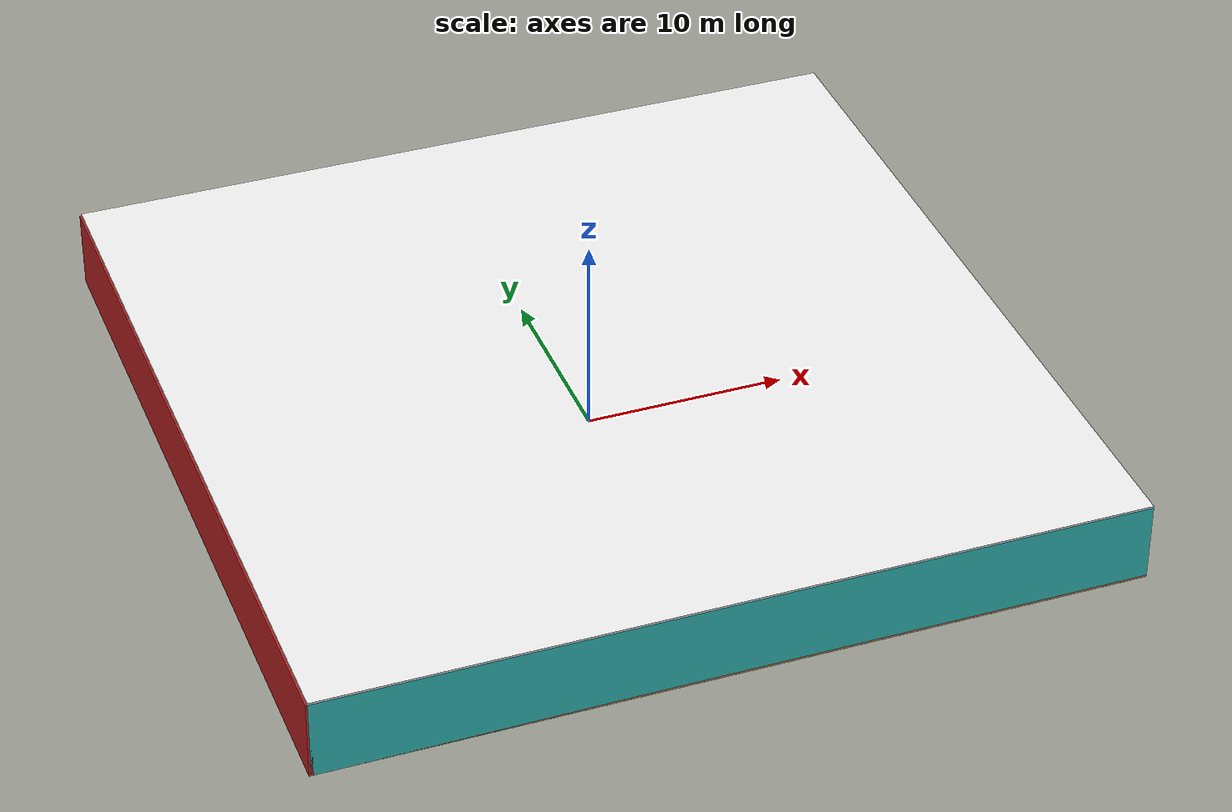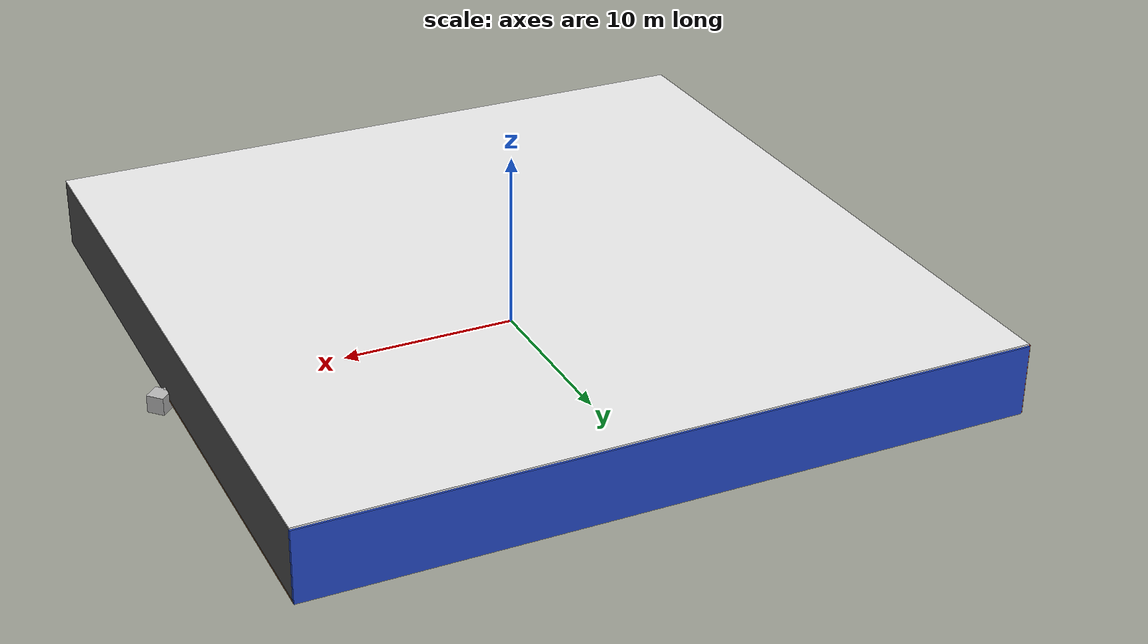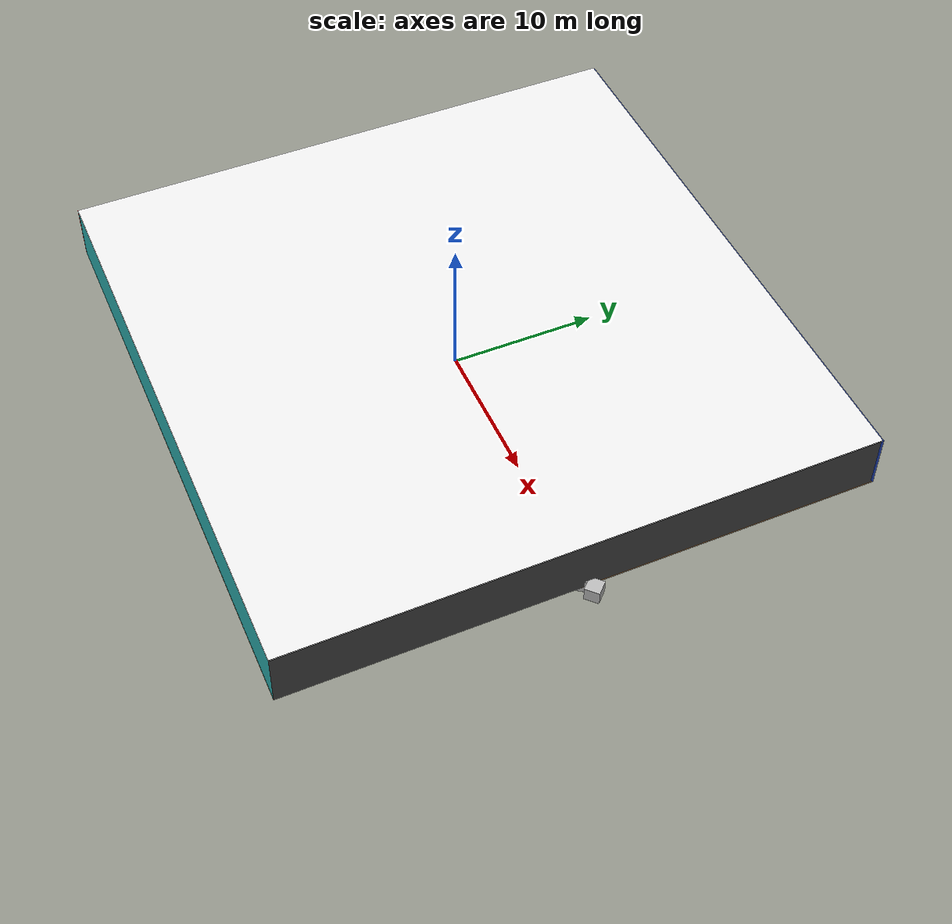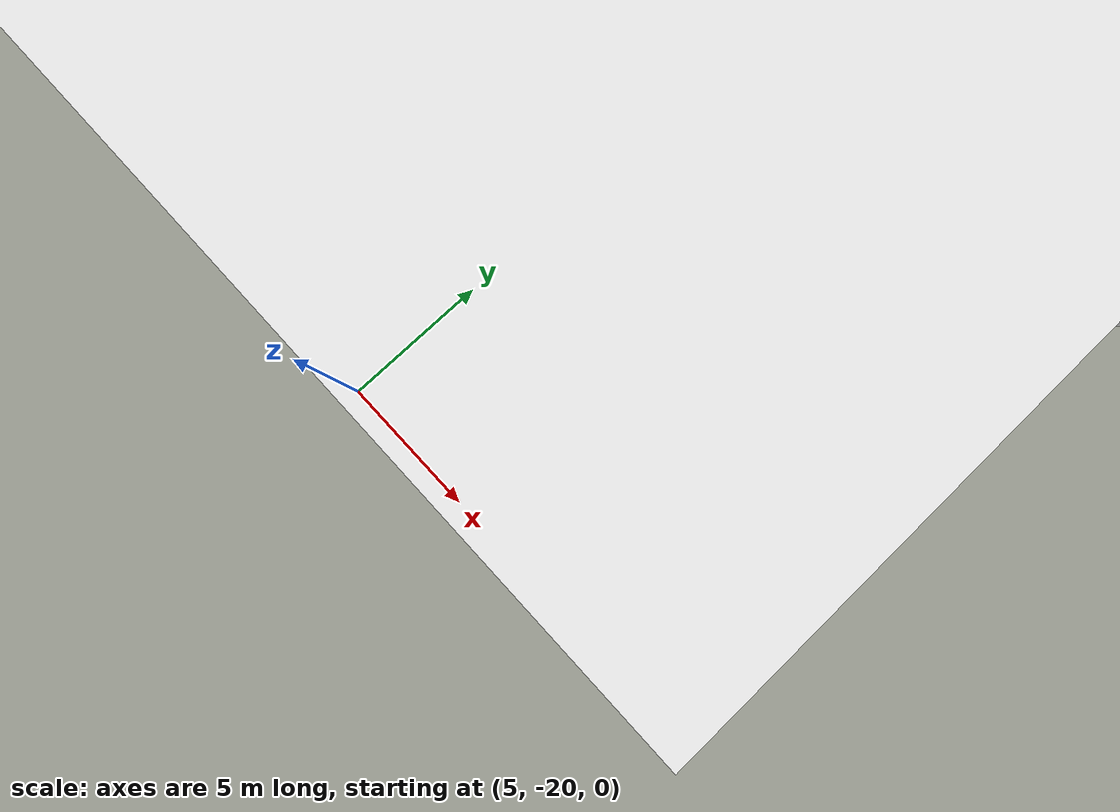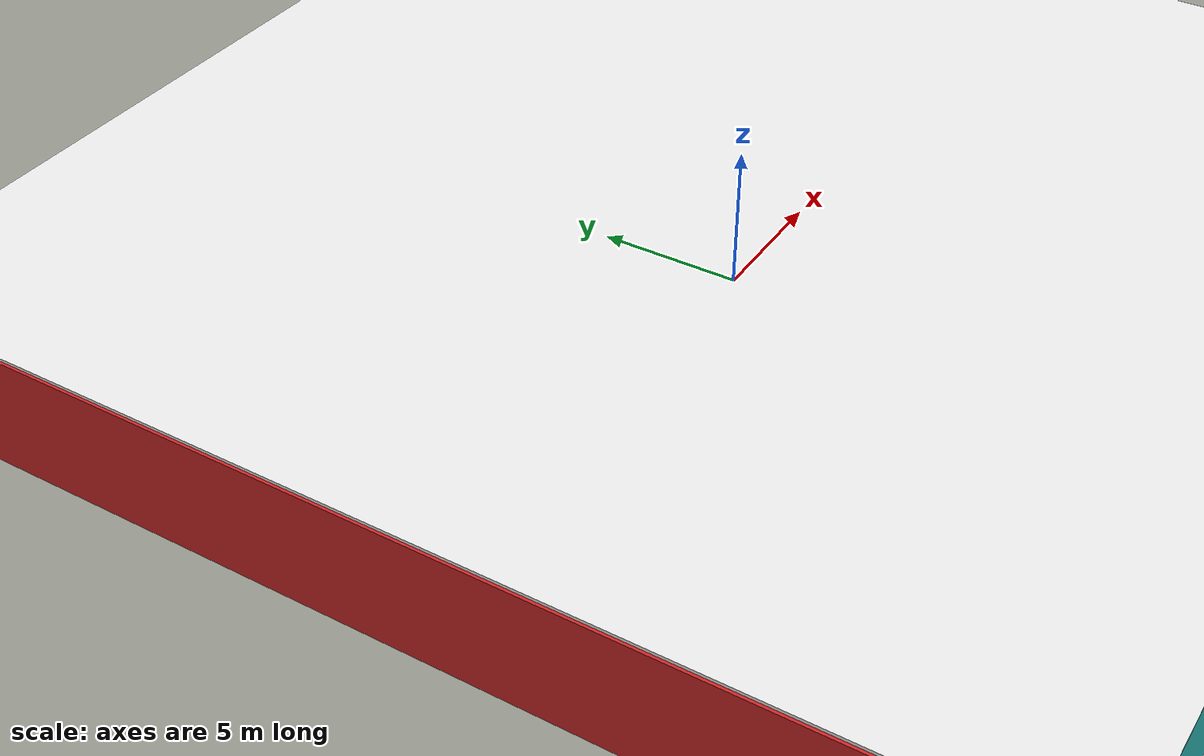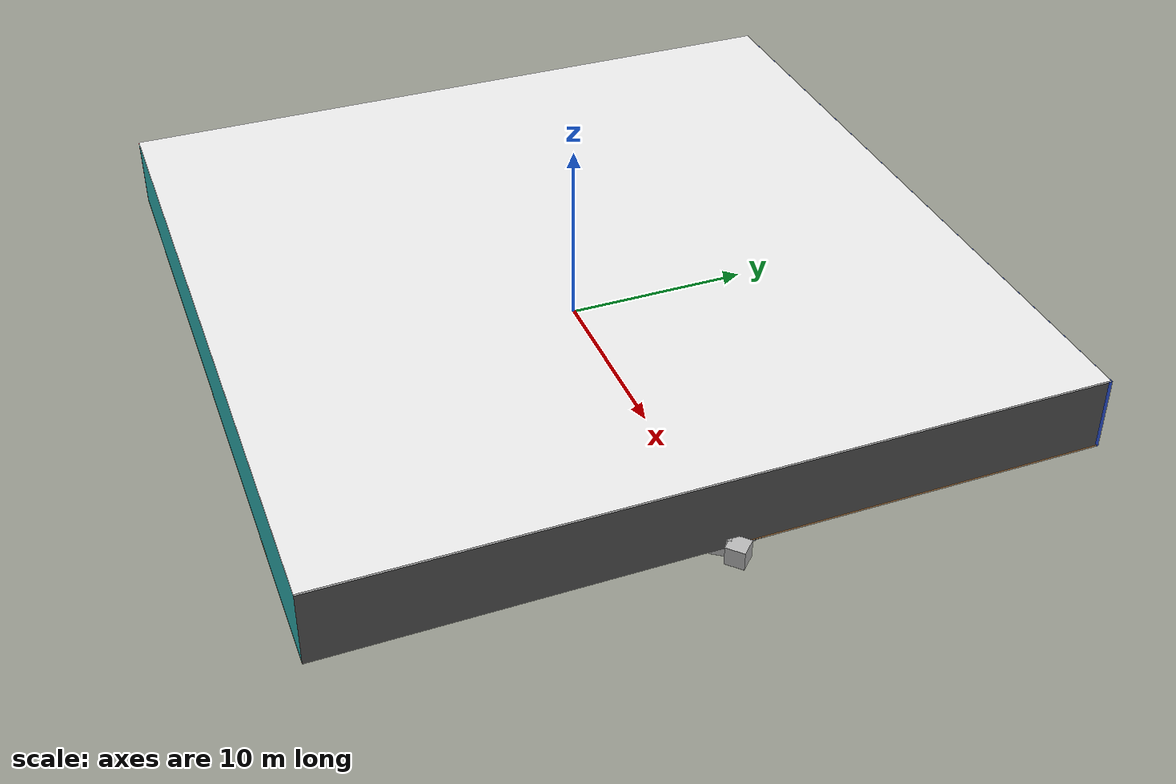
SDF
<sdf version="1.4">
 <world name="default">
  <physics type="ode">
   <max_step_size>0.001</max_step_size>
   <real_time_factor>1</real_time_factor>
   <real_time_update_rate>1000</real_time_update_rate>
   <gravity>0 0 -9.8</gravity>
  </physics>
  <scene><ambient>0.4 0.4 0.4 1</ambient><background>0.7 0.7 0.7 1</background><shadows>1</shadows></scene>
  <model name="Surrounding">
   <static>1</static>
   <link name="Ceiling">
    <collision name="Ceiling_Collision"><geometry><box><size>40 40 0.1</size></box></geometry></collision>
    <visual name="Ceiling_Visual">
     <geometry><box><size>40 40 0.1</size></box></geometry>
     <material>
      <script><uri>file://media/materials/scripts/gazebo.material</uri><name>Gazebo/WhiteGlow</name></script>
     </material>
    </visual>
    <pose>0 0 4.05 0 0 0</pose>
   </link>
   <link name="Wall_South">
    <collision name="Wall_South_Collision">
     <geometry><box><size>40 0 4</size></box></geometry>
     <pose>0 0 2 0 -0 0</pose>
    </collision>
    <visual name="Wall_South_Visual">
     <pose>0 0 2 0 -0 0</pose>
     <geometry><box><size>40 0 4</size></box></geometry>
     <material>
      <script>
       <uri>file://media/materials/scripts/gazebo.material</uri>
       <name>Gazebo/TurquoiseGlowOutline</name>
      </script>
     </material>
    </visual>
    <velocity_decay><linear>0</linear><angular>0</angular></velocity_decay>
    <pose>0 -20 0 0 -0 0</pose>
   </link>
   <link name="Wall_East">
    <collision name="Wall_21_Collision">
     <geometry><box><size>40 0 4</size></box></geometry>
     <pose>0 0 2 0 -0 0</pose>
    </collision>
    <visual name="Wall_21_Visual">
     <pose>0 0 2 0 -0 0</pose>
     <geometry><box><size>40 0 4</size></box></geometry>
     <material>
      <script><uri>file://media/materials/scripts/gazebo.material</uri><name>Gazebo/Road</name></script>
     </material>
    </visual>
    <velocity_decay><linear>0</linear><angular>0</angular></velocity_decay>
    <pose>20 0 0 0 -0 1.5708</pose>
   </link>
   <link name="Wall_North">
    <collision name="Wall_22_Collision">
     <geometry><box><size>40 0.2 4</size></box></geometry>
     <pose>0 0 2 0 -0 0</pose>
    </collision>
    <visual name="Wall_22_Visual">
     <pose>0 0 2 0 -0 0</pose>
     <geometry><box><size>40 0.2 4</size></box></geometry>
     <material>
      <script><uri>file://media/materials/scripts/gazebo.material</uri><name>Gazebo/BlueGlow</name></script>
     </material>
    </visual>
    <velocity_decay><linear>0</linear><angular>0</angular></velocity_decay>
    <pose>0 20 0 0 -0 0</pose>
   </link>
   <link name="Wall_West">
    <collision name="Wall_23_Collision">
     <geometry><box><size>40 0.2 4</size></box></geometry>
     <pose>0 0 2 0 -0 0</pose>
    </collision>
    <visual name="Wall_23_Visual">
     <pose>0 0 2 0 -0 0</pose>
     <geometry><box><size>40 0.2 4</size></box></geometry>
     <material>
      <script><uri>file://media/materials/scripts/gazebo.material</uri><name>Gazebo/Red</name></script>
     </material>
    </visual>
    <velocity_decay><linear>0</linear><angular>0</angular></velocity_decay>
    <pose>-20 0 0 0 0 -1.5708</pose>
   </link>
   <link name="Ground_link">
    <collision name="collision">
     <pose>0 0 .05 0 -0 0</pose>
     <geometry><box><size>40 40 0.1</size></box></geometry>
    </collision>
    <visual name="visual">
     <pose>0 0 .05 0 -0 0</pose>
     <geometry><box><size>40 40 0.1</size></box></geometry>
     <material>
      <script><uri>file://media/materials/scripts/gazebo.material</uri><name>Gazebo/WoodFloor</name></script>
     </material>
    </visual>
   </link>
   <static>1</static>
  </model>
  <spherical_coordinates>
   <surface_model>EARTH_WGS84</surface_model>
   <latitude_deg>0</latitude_deg>
   <longitude_deg>0</longitude_deg>
   <elevation>0</elevation>
   <heading_deg>0</heading_deg>
  </spherical_coordinates>
  <light name="lightball_0" type="diffuse">
   <diffuse>0.8 0.8 0.8 1</diffuse>
   <specular>0.2 0.2 0.2 1</specular>
   <attenuation>
    <range>100</range>
    <constant>0.7</constant>
    <linear>0.01</linear>
    <quadratic>0.001</quadratic>
   </attenuation>
   <direction>-0.5 0.1 -0.9</direction>
   <pose>13.274768244 15.2622880473 0.597273565765 0 0 0</pose>
  </light>
  <light name="lightball_1" type="diffuse">
   <diffuse>0.8 0.8 0.8 1</diffuse>
   <specular>0.2 0.2 0.2 1</specular>
   <attenuation>
    <range>100</range>
    <constant>0.7</constant>
    <linear>0.01</linear>
    <quadratic>0.001</quadratic>
   </attenuation>
   <direction>-0.5 0.1 -0.9</direction>
   <pose>-16.8286190831 18.4228617068 3.33995534063 0 0 0</pose>
  </light>
  <include><uri>model://table</uri><pose>-18.3067033622 -9.43222443908 0 0 0 2.43289964595</pose></include>
  <include>
   <uri>model://textured_shapes</uri>
   <pose>-14.4789776308 -6.25831227659 0 0 0 1.60221206537</pose>
  </include>
  <include><uri>model://cabinet</uri><pose>-14.0309210286 10.0313609381 0 0 0 0.405228947315</pose></include>
  <include>
   <uri>model://construction_cone</uri>
   <pose>-15.2657338504 18.5808004505 0 0 0 2.45284328801</pose>
  </include>
  <include><uri>model://table</uri><pose>-10.642903835 -14.6333708186 0 0 0 0.227147259635</pose></include>
  <include>
   <uri>model://robocup_3Dsim_goal</uri>
   <pose>-10.7811300318 -4.93600468722 0 0 0 2.29363527181</pose>
  </include>
  <include>
   <uri>model://robocup_3Dsim_goal</uri>
   <pose>-12.0380228914 6.04101595099 0 0 0 1.84032256534</pose>
  </include>
  <include><uri>model://cabinet</uri><pose>-10.4496771463 16.5934922751 0 0 0 0.196317168202</pose></include>
  <include>
   <uri>model://textured_shapes</uri>
   <pose>-7.49758468604 -16.3021408534 0 0 0 0.592008154856</pose>
  </include>
  <include><uri>model://cabinet</uri><pose>-8.69152901607 -9.39307847788 0 0 0 0.445237641606</pose></include>
  <include><uri>model://cabinet</uri><pose>-8.74112066073 -2.55423851438 0 0 0 0.735992668742</pose></include>
  <include>
   <uri>model://construction_cone</uri>
   <pose>-7.51430223674 0.334221209642 0 0 0 3.08930866538</pose>
  </include>
  <include>
   <uri>model://textured_shapes</uri>
   <pose>-6.59888434414 3.94179702612 0 0 0 2.63212889609</pose>
  </include>
  <include>
   <uri>model://construction_cone</uri>
   <pose>-4.52371108555 12.5850885699 0 0 0 0.0247225386062</pose>
  </include>
  <include><uri>model://cabinet</uri><pose>-2.45242519937 -16.5413720472 0 0 0 2.33555826714</pose></include>
  <include><uri>model://table</uri><pose>-2.0092581123 -8.44743985749 0 0 0 2.56370305361</pose></include>
  <include><uri>model://cabinet</uri><pose>-2.24201862135 17.7909616695 0 0 0 2.48933582816</pose></include>
  <include><uri>model://cabinet</uri><pose>1.44593748119 3.66647396807 0 0 0 1.00471824937</pose></include>
  <include><uri>model://table</uri><pose>3.12277002969 -8.44561209347 0 0 0 0.868820081165</pose></include>
  <include>
   <uri>model://construction_cone</uri>
   <pose>3.17084635714 -0.611076010099 0 0 0 0.0420249595603</pose>
  </include>
  <include>
   <uri>model://textured_shapes</uri>
   <pose>2.69140507341 6.00474104252 0 0 0 2.22602238643</pose>
  </include>
  <include>
   <uri>model://robocup_3Dsim_goal</uri>
   <pose>6.05219632955 -14.7229583461 0 0 0 0.993245050326</pose>
  </include>
  <include>
   <uri>model://robocup_3Dsim_goal</uri>
   <pose>5.3499977526 -0.0234727713454 0 0 0 2.56249287865</pose>
  </include>
  <include>
   <uri>model://construction_cone</uri>
   <pose>5.99633269754 3.48631195143 0 0 0 2.54055162294</pose>
  </include>
  <include>
   <uri>model://construction_cone</uri>
   <pose>5.5668449233 15.6906623096 0 0 0 2.73977130589</pose>
  </include>
  <include><uri>model://cabinet</uri><pose>9.43972502185 -14.8912715809 0 0 0 2.57624905048</pose></include>
  <include>
   <uri>model://textured_shapes</uri>
   <pose>10.2055054627 -2.73091595837 0 0 0 2.55606868877</pose>
  </include>
  <include><uri>model://table</uri><pose>10.4977430608 18.7086502022 0 0 0 0.889518345394</pose></include>
  <include><uri>model://table</uri><pose>12.3225851833 -5.50021277571 0 0 0 1.76367701717</pose></include>
  <include>
   <uri>model://robocup_3Dsim_goal</uri>
   <pose>14.4318372898 -14.8687531645 0 0 0 3.05560699612</pose>
  </include>
  <include><uri>model://cabinet</uri><pose>15.5440494895 -9.10962296094 0 0 0 2.18011903476</pose></include>
  <include>
   <uri>model://textured_shapes</uri>
   <pose>15.7717423051 -6.39221546824 0 0 0 2.15875637007</pose>
  </include>
  <include><uri>model://cabinet</uri><pose>16.2207725554 5.54918688579 0 0 0 0.332549175672</pose></include>
  <include><uri>model://cabinet</uri><pose>19.2674148116 -8.74497878859 0 0 0 1.09509649241</pose></include>
  <include>
   <uri>model://textured_shapes</uri>
   <pose>18.6078114888 -1.36509637987 0 0 0 2.53254422869</pose>
  </include>
  <include>
   <uri>model://textured_shapes</uri>
   <pose>19.4015998676 1.29966455027 0 0 0 0.771119543232</pose>
  </include>
  <include><uri>model://table</uri><pose>17.9927156776 12.8835678688 0 0 0 1.34627064108</pose></include>
 </world>
</sdf>

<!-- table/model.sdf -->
<sdf version="1.5">
  <model name="table">
    <static>true</static>
    <link name="link">
      <collision name="surface">
        <pose>0 0 1.0 0 0 0</pose>
        <geometry>
          <box>
            <size>1.5 0.8 0.03</size>
          </box>
        </geometry>
        <surface>
          <friction>
            <ode>
              <mu>0.6</mu>
              <mu2>0.6</mu2>
            </ode>
          </friction>
        </surface>
      </collision>
      <visual name="visual1">
        <pose>0 0 1.0 0 0 0</pose>
        <geometry>
          <box>
            <size>1.5 0.8 0.03</size>
          </box>
        </geometry>
        <material>
          <script>
            <uri>model://media/materials/scripts/gazebo.material</uri>
            <name>Gazebo/Wood</name>
          </script>
        </material>
      </visual>
      <collision name="front_left_leg">
        <pose>0.68 0.38 0.5 0 0 0</pose>
        <geometry>
          <cylinder>
            <radius>0.02</radius>
            <length>1.0</length>
          </cylinder>
        </geometry>
      </collision>
      <visual name="front_left_leg">
        <pose>0.68 0.38 0.5 0 0 0</pose>
        <geometry>
          <cylinder>
            <radius>0.02</radius>
            <length>1.0</length>
          </cylinder>
        </geometry>
        <material>
          <script>
            <uri>model://media/materials/scripts/gazebo.material</uri>
            <name>Gazebo/Grey</name>
          </script>
        </material>
      </visual>
      <collision name="front_right_leg">
        <pose>0.68 -0.38 0.5 0 0 0</pose>
        <geometry>
          <cylinder>
            <radius>0.02</radius>
            <length>1.0</length>
          </cylinder>
        </geometry>
      </collision>
      <visual name="front_right_leg">
        <pose>0.68 -0.38 0.5 0 0 0</pose>
        <geometry>
          <cylinder>
            <radius>0.02</radius>
            <length>1.0</length>
          </cylinder>
        </geometry>
        <material>
          <script>
            <uri>model://media/materials/scripts/gazebo.material</uri>
            <name>Gazebo/Grey</name>
          </script>
        </material>
      </visual>
      <collision name="back_right_leg">
        <pose>-0.68 -0.38 0.5 0 0 0</pose>
        <geometry>
          <cylinder>
            <radius>0.02</radius>
            <length>1.0</length>
          </cylinder>
        </geometry>
      </collision>
      <visual name="back_right_leg">
        <pose>-0.68 -0.38 0.5 0 0 0</pose>
        <geometry>
          <cylinder>
            <radius>0.02</radius>
            <length>1.0</length>
          </cylinder>
        </geometry>
        <material>
          <script>
            <uri>model://media/materials/scripts/gazebo.material</uri>
            <name>Gazebo/Grey</name>
          </script>
        </material>
      </visual>
      <collision name="back_left_leg">
        <pose>-0.68 0.38 0.5 0 0 0</pose>
        <geometry>
          <cylinder>
            <radius>0.02</radius>
            <length>1.0</length>
          </cylinder>
        </geometry>
      </collision>
      <visual name="back_left_leg">
        <pose>-0.68 0.38 0.5 0 0 0</pose>
        <geometry>
          <cylinder>
            <radius>0.02</radius>
            <length>1.0</length>
          </cylinder>
        </geometry>
        <material>
          <script>
            <uri>model://media/materials/scripts/gazebo.material</uri>
            <name>Gazebo/Grey</name>
          </script>
        </material>
      </visual>
    </link>
  </model>
</sdf>

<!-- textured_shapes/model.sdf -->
<sdf version="1.6">
  <model name="textured_shapes">
    <pose>0 0 0.5 0 0 0</pose>
    <link name="box">
      <pose>0 -1.5 0 0 0 0</pose>
      <collision name="collision">
        <geometry>
          <box>
            <size>1 1 1</size>
          </box>
        </geometry>
      </collision>
      <visual name="visual">
        <geometry>
          <box>
            <size>1 1 1</size>
          </box>
        </geometry>
        <material>
          <script>
            <uri>model://../model_source/models/textured_shapes/materials/scripts</uri>
            <uri>model://../model_source/models/textured_shapes/materials/textures</uri>
            <name>TexturedShape/Squares</name>
          </script>
        </material>
      </visual>
    </link>
    <link name="sphere">
      <collision name="collision">
        <geometry>
          <sphere>
            <radius>0.5</radius>
          </sphere>
        </geometry>
      </collision>
      <visual name="visual">
        <geometry>
          <sphere>
            <radius>0.5</radius>
          </sphere>
        </geometry>
        <material>
          <script>
            <uri>model://../model_source/models/textured_shapes/materials/scripts</uri>
            <uri>model://../model_source/models/textured_shapes/materials/textures</uri>
            <name>TexturedShape/Squares</name>
          </script>
        </material>
      </visual>
    </link>
    <link name="cylinder">
      <pose>0 1.5 0 0 0 0</pose>
      <collision name="collision">
        <geometry>
          <cylinder>
            <radius>0.5</radius>
            <length>1</length>
          </cylinder>
        </geometry>
      </collision>
      <visual name="visual">
        <geometry>
          <cylinder>
            <radius>0.5</radius>
            <length>1</length>
          </cylinder>
        </geometry>
        <material>
          <script>
            <uri>model://../model_source/models/textured_shapes/materials/scripts</uri>
            <uri>model://../model_source/models/textured_shapes/materials/textures</uri>
            <name>TexturedShape/Squares</name>
          </script>
        </material>
      </visual>
    </link>
  </model>
</sdf>

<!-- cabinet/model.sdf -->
<sdf version="1.5">
  <model name="cabinet">
    <static>true</static>
    <link name="cabinet_bottom_plate">
      <inertial>
        <pose>0 0 -1 0 0 0</pose>
        <inertia>
          <ixx>2.050000</ixx>
          <ixy>0</ixy>
          <ixz>0</ixz>
          <iyy>2.050000</iyy>
          <iyz>0</iyz>
          <izz>2.050000</izz>
        </inertia>
        <mass>25.000000</mass>
      </inertial>
      <collision name="cabinet_bottom_plate_geom">
        <pose>0 0 0.010000 0 0 0</pose>
        <geometry>
          <box>
            <size>0.450000 0.450000 0.020000</size>
          </box>
        </geometry>
      </collision>
      <visual name="cabinet_bottom_plate_geom_visual">
        <pose>0 0 0.010000 0 0 0</pose>
        <geometry>
          <box>
            <size>0.450000 0.450000 0.020000</size>
          </box>
        </geometry>
        <material>
          <script>
            <uri>model://media/materials/scripts/gazebo.material</uri>
            <name>Gazebo/Wood</name>
          </script>
        </material>
      </visual>
      <collision name="cabinet_bottom_plate_geom_cabinet_back_plate">
        <pose>0.235000 0 0.510000 0 0 0</pose>
        <geometry>
          <box>
            <size>0.020000 0.450000 1.020000</size>
          </box>
        </geometry>
      </collision>
      <visual name="cabinet_bottom_plate_geom_cabinet_back_plate_visual">
        <pose>0.235000 0 0.510000 0 0 0</pose>
        <geometry>
          <box>
            <size>0.020000 0.450000 1.020000</size>
          </box>
        </geometry>
        <material>
          <script>
            <uri>model://media/materials/scripts/gazebo.material</uri>
            <name>Gazebo/Wood</name>
          </script>
        </material>
      </visual>
      <collision name="cabinet_bottom_plate_geom_cabinet_left_plate">
        <pose>0 0.235000 0.510000 0 0 0</pose>
        <geometry>
          <box>
            <size>0.450000 0.020000 1.020000</size>
          </box>
        </geometry>
      </collision>
      <visual name="cabinet_bottom_plate_geom_cabinet_left_plate_visual">
        <pose>0 0.235000 0.510000 0 0 0</pose>
        <geometry>
          <box>
            <size>0.450000 0.020000 1.020000</size>
          </box>
        </geometry>
        <material>
          <script>
            <uri>model://media/materials/scripts/gazebo.material</uri>
            <name>Gazebo/Wood</name>
          </script>
        </material>
      </visual>
      <collision name="cabinet_bottom_plate_geom_cabinet_middle_plate">
        <pose>0 0 0.510000 0 0 0</pose>
        <geometry>
          <box>
            <size>0.450000 0.450000 0.020000</size>
          </box>
        </geometry>
      </collision>
      <visual name="cabinet_bottom_plate_geom_cabinet_middle_plate_visual">
        <pose>0 0 0.510000 0 0 0</pose>
        <geometry>
          <box>
            <size>0.450000 0.450000 0.020000</size>
          </box>
        </geometry>
        <material>
          <script>
            <uri>model://media/materials/scripts/gazebo.material</uri>
            <name>Gazebo/Wood</name>
          </script>
        </material>
      </visual>
      <collision name="cabinet_bottom_plate_geom_cabinet_right_plate">
        <pose>0 -0.235000 0.510000 0 0 0</pose>
        <geometry>
          <box>
            <size>0.450000 0.020000 1.020000</size>
          </box>
        </geometry>
      </collision>
      <visual name="cabinet_bottom_plate_geom_cabinet_right_plate_visual">
        <pose>0 -0.235000 0.510000 0 0 0</pose>
        <geometry>
          <box>
            <size>0.450000 0.020000 1.020000</size>
          </box>
        </geometry>
        <material>
          <script>
            <uri>model://media/materials/scripts/gazebo.material</uri>
            <name>Gazebo/Wood</name>
          </script>
        </material>
      </visual>
      <collision name="cabinet_bottom_plate_geom_cabinet_top_plate">
        <pose>0 0 1.010000 0 0 0</pose>
        <geometry>
          <box>
            <size>0.450000 0.450000 0.020000</size>
          </box>
        </geometry>
      </collision>
      <visual name="cabinet_bottom_plate_geom_cabinet_top_plate_visual">
        <pose>0 0 1.010000 0 0 0</pose>
        <geometry>
          <box>
            <size>0.450000 0.450000 0.020000</size>
          </box>
        </geometry>
        <material>
          <script>
            <uri>model://media/materials/scripts/gazebo.material</uri>
            <name>Gazebo/Wood</name>
          </script>
        </material>
      </visual>
    </link>
  </model>
</sdf>

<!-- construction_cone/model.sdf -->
<sdf version="1.5">
  <model name="Construction Cone">
    <link name="link">
      <collision name="collision">
        <geometry>
          <mesh>
            <scale>10 10 10</scale>
            <uri>file://isr-testbed/construction_cone/meshes/construction_cone.dae</uri>
          </mesh>
        </geometry>
      </collision>
      <visual name="visual">
        <geometry>
          <mesh>
            <scale>10 10 10</scale>
            <uri>file://isr-testbed/construction_cone/meshes/construction_cone.dae</uri>
          </mesh>
        </geometry>
      </visual>
    </link>
  </model>
</sdf>

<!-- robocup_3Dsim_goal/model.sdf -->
<sdf version="1.5">
  <model name="robocup_3d_goal">
    <static>true</static>
    <link name="left_post">
      <pose>0 1.05 0.45 0 0 0</pose>
      <collision name="collision">
        <geometry>
          <cylinder>
            <radius>0.05</radius>
            <length>0.9</length>
          </cylinder>
        </geometry>
      </collision>
      <visual name="visual">
        <geometry>
          <cylinder>
            <radius>0.05</radius>
            <length>0.9</length>
          </cylinder>
        </geometry>
        <material>
          <script>
            <uri>file://media/materials/scripts/gazebo.material</uri>
            <name>Gazebo/ZincYellow</name>
          </script>
        </material>
      </visual>
    </link>
    <link name="left_support_horiz_lower">
      <pose>0.30 1.05 0.01 0 0 0</pose>
      <collision name="collision">
        <geometry>
          <box>
            <size>0.50 0.02 0.02</size>
          </box>
        </geometry>
      </collision>
      <visual name="visual">
        <geometry>
          <box>
            <size>0.50 0.02 0.02</size>
          </box>
        </geometry>
        <material>
          <script>
            <uri>file://media/materials/scripts/gazebo.material</uri>
            <name>Gazebo/White</name>
          </script>
        </material>
      </visual>
    </link>
    <link name="left_support_horiz_upper">
      <pose>0.30 1.05 0.79 0 0 0</pose>
      <collision name="collision">
        <geometry>
          <box>
            <size>0.50 0.02 0.02</size>
          </box>
        </geometry>
      </collision>
      <visual name="visual">
        <geometry>
          <box>
            <size>0.50 0.02 0.02</size>
          </box>
        </geometry>
        <material>
          <script>
            <uri>file://media/materials/scripts/gazebo.material</uri>
            <name>Gazebo/White</name>
          </script>
        </material>
      </visual>
    </link>
    <link name="left_support_vertical">
      <pose>0.56 1.05 0.4 0 1.5708 0</pose>
      <collision name="collision">
        <geometry>
          <box>
            <size>0.80 0.02 0.02</size>
          </box>
        </geometry>
      </collision>
      <visual name="visual">
        <geometry>
          <box>
            <size>0.80 0.02 0.02</size>
          </box>
        </geometry>
        <material>
          <script>
            <uri>file://media/materials/scripts/gazebo.material</uri>
            <name>Gazebo/White</name>
          </script>
        </material>
      </visual>
    </link>
    <link name="right_support_horiz_lower">
      <pose>0.30 -1.05 0.01 0 0 0</pose>
      <collision name="collision">
        <geometry>
          <box>
            <size>0.50 0.02 0.02</size>
          </box>
        </geometry>
      </collision>
      <visual name="visual">
        <geometry>
          <box>
            <size>0.50 0.02 0.02</size>
          </box>
        </geometry>
        <material>
          <script>
            <uri>file://media/materials/scripts/gazebo.material</uri>
            <name>Gazebo/White</name>
          </script>
        </material>
      </visual>
    </link>
    <link name="right_support_horiz_upper">
      <pose>0.30 -1.05 0.79 0 0 0</pose>
      <collision name="collision">
        <geometry>
          <box>
            <size>0.50 0.02 0.02</size>
          </box>
        </geometry>
      </collision>
      <visual name="visual">
        <geometry>
          <box>
            <size>0.50 0.02 0.02</size>
          </box>
        </geometry>
        <material>
          <script>
            <uri>file://media/materials/scripts/gazebo.material</uri>
            <name>Gazebo/White</name>
          </script>
        </material>
      </visual>
    </link>
    <link name="right_support_vertical">
      <pose>0.56 -1.05 0.4 0 1.5708 0</pose>
      <collision name="collision">
        <geometry>
          <box>
            <size>0.80 0.02 0.02</size>
          </box>
        </geometry>
      </collision>
      <visual name="visual">
        <geometry>
          <box>
            <size>0.80 0.02 0.02</size>
          </box>
        </geometry>
        <material>
          <script>
            <uri>file://media/materials/scripts/gazebo.material</uri>
            <name>Gazebo/White</name>
          </script>
        </material>
      </visual>
    </link>
    <link name="center_support_horiz_lower">
      <pose>0.56 0 0.01 0 1.5708 0</pose>
      <collision name="collision">
        <geometry>
          <box>
            <size>0.02 2.08 0.02</size>
          </box>
        </geometry>
      </collision>
      <visual name="visual">
        <geometry>
          <box>
            <size>0.02 2.08 0.02</size>
          </box>
        </geometry>
        <material>
          <script>
            <uri>file://media/materials/scripts/gazebo.material</uri>
            <name>Gazebo/White</name>
          </script>
        </material>
      </visual>
    </link>
    <link name="center_support_horiz_upper">
      <pose>0.56 0 0.79 0 1.5708 0</pose>
      <collision name="collision">
        <geometry>
          <box>
            <size>0.02 2.08 0.02</size>
          </box>
        </geometry>
      </collision>
      <visual name="visual">
        <geometry>
          <box>
            <size>0.02 2.08 0.02</size>
          </box>
        </geometry>
        <material>
          <script>
            <uri>file://media/materials/scripts/gazebo.material</uri>
            <name>Gazebo/White</name>
          </script>
        </material>
      </visual>
    </link>
    <link name="right_post">
      <pose>0 -1.05 0.45 0 0 0</pose>
      <collision name="collision">
        <geometry>
          <cylinder>
            <radius>0.05</radius>
            <length>0.9</length>
          </cylinder>
        </geometry>
      </collision>
      <visual name="visual">
        <geometry>
          <cylinder>
            <radius>0.05</radius>
            <length>0.9</length>
          </cylinder>
        </geometry>
        <material>
          <script>
            <uri>file://media/materials/scripts/gazebo.material</uri>
            <name>Gazebo/ZincYellow</name>
          </script>
        </material>
      </visual>
    </link>
    <link name="crossbar">
      <pose>0 0 0.85 1.57 1.57 0</pose>
      <collision name="collision">
        <geometry>
          <cylinder>
            <radius>0.05</radius>
            <length>2.0</length>
          </cylinder>
        </geometry>
      </collision>
      <visual name="visual">
        <geometry>
          <cylinder>
            <radius>0.05</radius>
            <length>2.0</length>
          </cylinder>
        </geometry>
        <material>
          <script>
            <uri>file://media/materials/scripts/gazebo.material</uri>
            <name>Gazebo/ZincYellow</name>
          </script>
        </material>
      </visual>
    </link>
    <link name="center_net">
      <pose>0.56 0 0.40 0 0 0</pose>
      <collision name="collision">
        <geometry>
          <box>
            <size>0.01 2.1 0.80</size>
          </box>
        </geometry>
      </collision>
      <visual name="visual">
        <geometry>
          <box>
            <size>0.01 2.1 0.80</size>
          </box>
        </geometry>
        <material>
          <script>
            <uri>model://../model_source/models/robocup09_spl_field/materials/scripts/</uri>
            <uri>model://../model_source/models/robocup09_spl_field/materials/textures/</uri>
            <name>RoboCup/Net</name>
          </script>
        </material>
      </visual>
    </link>
    <link name="left_net">
      <pose>0.30 1.05 0.40 0 0 0</pose>
      <collision name="collision">
        <geometry>
          <box>
            <size>0.50 0.01 0.76</size>
          </box>
        </geometry>
      </collision>
      <visual name="visual">
        <geometry>
          <box>
            <size>0.50 0.01 0.76</size>
          </box>
        </geometry>
        <material>
          <script>
            <uri>model://../model_source/models/robocup09_spl_field/materials/scripts/</uri>
            <uri>model://../model_source/models/robocup09_spl_field/materials/textures/</uri>
            <name>RoboCup/Net</name>
          </script>
        </material>
      </visual>
    </link>
    <link name="right_net">
      <pose>0.30 -1.05 0.40 0 0 0</pose>
      <collision name="collision">
        <geometry>
          <box>
            <size>0.50 0.01 0.76</size>
          </box>
        </geometry>
      </collision>
      <visual name="visual">
        <geometry>
          <box>
            <size>0.50 0.01 0.76</size>
          </box>
        </geometry>
        <material>
          <script>
            <uri>model://../model_source/models/robocup09_spl_field/materials/scripts/</uri>
            <uri>model://../model_source/models/robocup09_spl_field/materials/textures/</uri>
            <name>RoboCup/Net</name>
          </script>
        </material>
      </visual>
    </link>
  </model>
</sdf>
